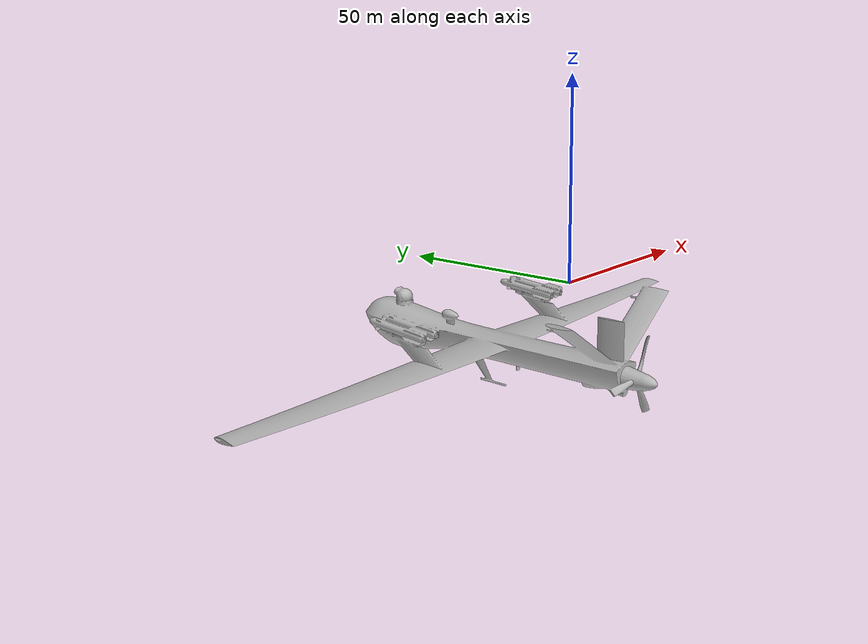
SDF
<?xml version="1.0"?>
<sdf version="1.9">
  <model name="stingjet">
    <static>false</static>
    <link name="body">
      <pose>0 0 0 -1.5708 0 0</pose>
      <gravity>false</gravity>
      <inertial>
        <mass>1.0</mass>
        <inertia>
          <ixx>0.02</ixx><iyy>0.02</iyy><izz>0.04</izz>
          <ixy>0.0</ixy><ixz>0.0</ixz><iyz>0.0</iyz>
        </inertia>
      </inertial>
      <visual name="visual">
        <geometry>
          <mesh>
            <uri>model://stingjet/stingjet.glb</uri>
            <scale>0.1 0.1 0.1</scale>
          </mesh>
        </geometry>
      </visual>
      <collision name="collision">
        <geometry>
          <mesh>
            <uri>model://stingjet/stingjet.glb</uri>
            <scale>0.1 0.1 0.1</scale>
          </mesh>
        </geometry>
        <surface>
          <bounce>
            <restitution_coefficient>0.1</restitution_coefficient>
            <threshold>0.0</threshold>
          </bounce>
          <friction>
            <ode><mu>1.0</mu><mu2>1.0</mu2></ode>
          </friction>
          <contact>
            <ode>
              <kp>100000</kp><kd>10</kd>
              <max_vel>1.0</max_vel><min_depth>0.001</min_depth>
            </ode>
          </contact>
        </surface>
      </collision>
      <sensor name="contact_sensor" type="contact">
        <always_on>true</always_on>
        <update_rate>50.0</update_rate>
        <contact>
          <collision>collision</collision>
        </contact>
      </sensor>
    </link>
  </model>
</sdf>
